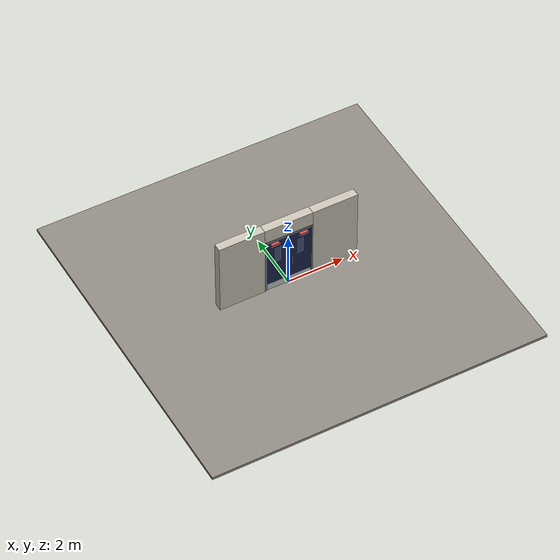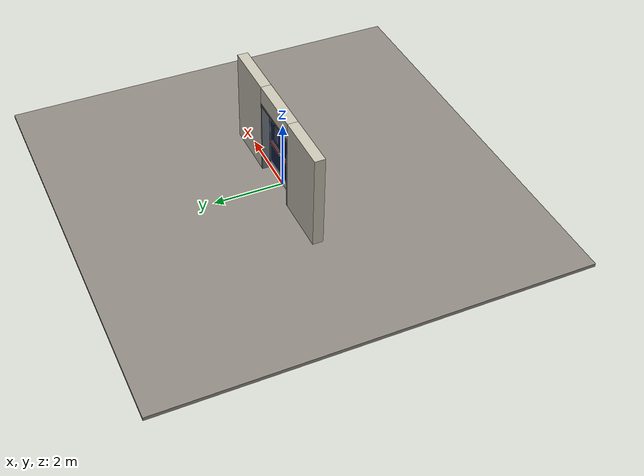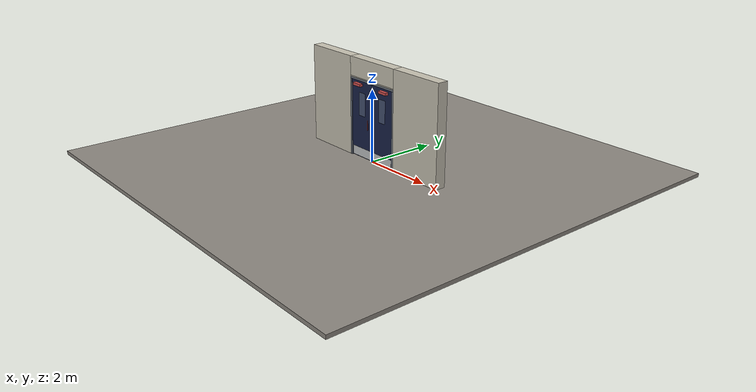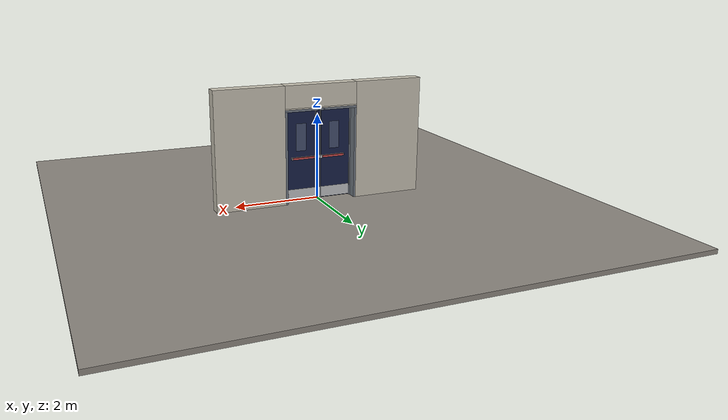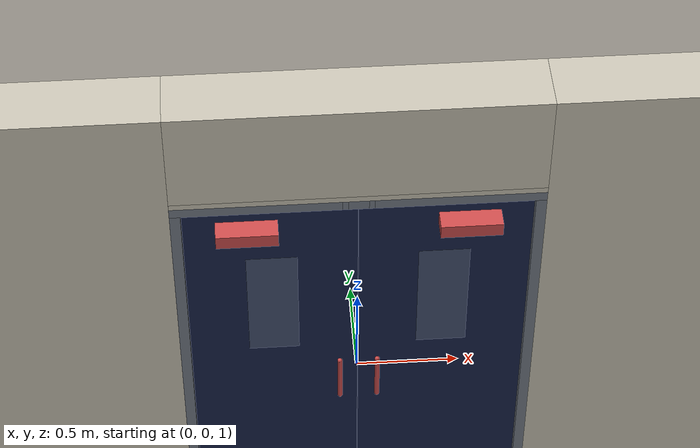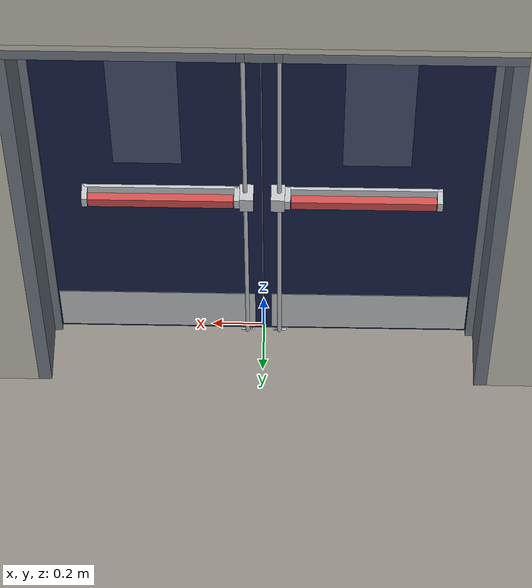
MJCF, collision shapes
<?xml version="1.0" ?>
<mujoco model="db0275_swing_double_full">
  <compiler angle="radian" meshdir="../../hardware" texturedir="../../textures" autolimits="true" inertiafromgeom="false"/>
  <option timestep="0.002" integrator="implicitfast" cone="elliptic" impratio="10" noslip_iterations="3">
    <flag multiccd="enable"/>
  </option>
  <size memory="16M"/>
  <default>
    <geom condim="4" solref="0.005 1" solimp="0.95 0.99 0.001"/>
    <joint solreflimit="0.005 1" solimplimit="0.95 0.99 0.001"/>
    <tendon solreflimit="0.005 1"/>
    <equality solref="0.002 1"/>
  </default>
  <visual>
    <headlight ambient="0.4 0.4 0.4" diffuse="0.7 0.7 0.7" specular="0.2 0.2 0.2"/>
    <quality shadowsize="4096"/>
    <map znear="0.01" zfar="60"/>
  </visual>
  <asset>
    <mesh name="closer_body_fdc4667657" file="closer_body_fdc4667657.obj"/>
    <mesh name="exit_sign_a6449bfa2c" file="exit_sign_a6449bfa2c.obj"/>
    <mesh name="hinge_e22b26c0c1" file="hinge_e22b26c0c1.obj"/>
    <mesh name="hinge_jamb_e1d088f8dc" file="hinge_jamb_e1d088f8dc.obj"/>
    <mesh name="pull_f8d79d6331" file="pull_f8d79d6331.obj"/>
    <mesh name="touchbar_pad_7cd2ebfaf5" file="touchbar_pad_7cd2ebfaf5.obj"/>
    <material name="mat_floor" rgba="0.55 0.53 0.5 1" specular="0.2" shininess="0.15" reflectance="0"/>
    <material name="mat_wall" rgba="0.78 0.76 0.7 1" specular="0.2" shininess="0.1" reflectance="0"/>
    <material name="mat_leaf_a" rgba="0.09 0.13 0.28 1" specular="0.23" shininess="0.36" reflectance="0.02"/>
    <material name="mat_glass" rgba="0.85 0.92 0.95 0.25" specular="0.2" shininess="0.95" reflectance="0.1"/>
    <material name="mat_hinge" rgba="0.65 0.66 0.68 1" specular="0.74" shininess="0.5" reflectance="0.36"/>
    <material name="mat_op_stainless" rgba="0.75 0.76 0.77 1" specular="0.8" shininess="0.65" reflectance="0.4"/>
    <material name="mat_bolt" rgba="0.75 0.76 0.77 1" specular="0.8" shininess="0.65" reflectance="0.4"/>
    <material name="mat_closer" rgba="0.22 0.17 0.13 1" specular="0.8" shininess="0.6" reflectance="0.4"/>
    <material name="mat_kick" rgba="0.75 0.76 0.77 1" specular="0.8" shininess="0.65" reflectance="0.4"/>
    <material name="mat_exit_sign" rgba="0.85 0.1 0.1 1" specular="0.2" shininess="0.6" reflectance="0"/>
    <material name="mat_sign_bracket" rgba="0.8 0.81 0.83 1" specular="0.8" shininess="0.6" reflectance="0.4"/>
    <material name="mat_leaf_b" rgba="0.09 0.13 0.28 1" specular="0.23" shininess="0.36" reflectance="0.02"/>
    <material name="mat_frame" rgba="0.45 0.48 0.52 1" specular="0.32" shininess="0.6" reflectance="0.08"/>
    <texture name="skybox" type="skybox" builtin="gradient" rgb1="0.6 0.7 0.85" rgb2="0.9 0.92 0.95" width="256" height="256"/>
  </asset>
  <worldbody>
    <light name="sun" pos="1.5 -2.5 4" dir="-0.3 0.5 -0.8" directional="true" diffuse="0.8 0.8 0.8" specular="0.3 0.3 0.3" castshadow="true"/>
    <light name="fill" pos="-1.5 2.5 3" dir="0.3 -0.5 -0.7" directional="true" diffuse="0.35 0.35 0.4" castshadow="false"/>
    <camera name="robot_view" pos="0 -2.529812 1.812087" xyaxes="1 0 0 0 0.26963 0.962964" fovy="52"/>
    <camera name="far_view" pos="0 2.745812 1.812087" xyaxes="-1 0 0 0 -0.26963 0.962964" fovy="52"/>
    <camera name="iso" pos="-2.004737 -2.107762 2.234138" xyaxes="0.741536 -0.670913 0 0.242917 0.268487 0.932151" fovy="46"/>
    <camera name="detail_handle" pos="0.0885 -0.897 1.296" xyaxes="0.97561 0.219512 0 -0.070934 0.315262 0.94635" fovy="38"/>
    <geom name="floor" type="box" size="6 6 0.05" pos="0 0 -0.05" material="mat_floor" group="0" contype="1" conaffinity="1" friction="0.8 0.005 0.0001" density="2400"/>
    <geom name="wall_left" type="box" size="0.81625 0.15 1.3735" pos="-1.68375 0.108 1.3735" material="mat_wall" group="0" contype="1" conaffinity="1" friction="0.6 0.005 0.0001" density="800"/>
    <geom name="wall_right" type="box" size="0.81625 0.15 1.3735" pos="1.68375 0.108 1.3735" material="mat_wall" group="0" contype="1" conaffinity="1" friction="0.6 0.005 0.0001" density="800"/>
    <geom name="wall_header" type="box" size="0.8675 0.15 0.26" pos="0 0.108 2.487" material="mat_wall" group="0" contype="1" conaffinity="1" friction="0.6 0.005 0.0001" density="800"/>
    <geom name="hinge_0_jamb" type="mesh" mesh="hinge_jamb_e1d088f8dc" pos="-0.8145 -0.029 0.266" material="mat_hinge" group="1" contype="0" conaffinity="0" density="7850"/>
    <geom name="hinge_1_jamb" type="mesh" mesh="hinge_jamb_e1d088f8dc" pos="-0.8145 -0.029 1.0795" material="mat_hinge" group="1" contype="0" conaffinity="0" density="7850"/>
    <geom name="hinge_2_jamb" type="mesh" mesh="hinge_jamb_e1d088f8dc" pos="-0.8145 -0.029 1.963" material="mat_hinge" group="1" contype="0" conaffinity="0" density="7850"/>
    <geom name="leaf_a_bottom_strike_plate" type="box" size="0.0255 0.0255 0.00075" pos="-0.0615 0 0.00075" material="mat_bolt" group="0" contype="1" conaffinity="1" friction="0.6 0.005 0.0001" density="7850"/>
    <geom name="leaf_a_bottom_strike_p" type="box" size="0.0215 0.004 0.00575" pos="-0.0615 0.0145 0.00725" material="mat_bolt" group="0" contype="1" conaffinity="1" friction="0.6 0.005 0.0001" density="7850"/>
    <geom name="leaf_a_bottom_strike_n" type="box" size="0.0215 0.004 0.00575" pos="-0.0615 -0.0145 0.00725" material="mat_bolt" group="0" contype="1" conaffinity="1" friction="0.6 0.005 0.0001" density="7850"/>
    <geom name="leaf_a_bottom_strike_e" type="box" size="0.004 0.0215 0.00575" pos="-0.047 0 0.00725" material="mat_bolt" group="0" contype="1" conaffinity="1" friction="0.6 0.005 0.0001" density="7850"/>
    <geom name="exit_sign" type="mesh" mesh="exit_sign_a6449bfa2c" pos="0 0.15 2.447" material="mat_exit_sign" group="2" contype="0" conaffinity="0" density="500"/>
    <geom name="hinge_0_jamb_2" type="mesh" mesh="hinge_jamb_e1d088f8dc" pos="0.8145 -0.029 0.266" quat="0 0 1 0" material="mat_hinge" group="1" contype="0" conaffinity="0" density="7850"/>
    <geom name="hinge_1_jamb_2" type="mesh" mesh="hinge_jamb_e1d088f8dc" pos="0.8145 -0.029 1.0795" quat="0 0 1 0" material="mat_hinge" group="1" contype="0" conaffinity="0" density="7850"/>
    <geom name="hinge_2_jamb_2" type="mesh" mesh="hinge_jamb_e1d088f8dc" pos="0.8145 -0.029 1.963" quat="0 0 1 0" material="mat_hinge" group="1" contype="0" conaffinity="0" density="7850"/>
    <geom name="leaf_b_bottom_strike_plate" type="box" size="0.0255 0.0255 0.00075" pos="0.0615 0 0.00075" material="mat_bolt" group="0" contype="1" conaffinity="1" friction="0.6 0.005 0.0001" density="7850"/>
    <geom name="leaf_b_bottom_strike_p" type="box" size="0.0215 0.004 0.00575" pos="0.0615 0.0145 0.00725" material="mat_bolt" group="0" contype="1" conaffinity="1" friction="0.6 0.005 0.0001" density="7850"/>
    <geom name="leaf_b_bottom_strike_n" type="box" size="0.0215 0.004 0.00575" pos="0.0615 -0.0145 0.00725" material="mat_bolt" group="0" contype="1" conaffinity="1" friction="0.6 0.005 0.0001" density="7850"/>
    <geom name="leaf_b_bottom_strike_e" type="box" size="0.004 0.0215 0.00575" pos="0.047 0 0.00725" material="mat_bolt" group="0" contype="1" conaffinity="1" friction="0.6 0.005 0.0001" density="7850"/>
    <geom name="jamb_l" type="box" size="0.025 0.15 1.0735" pos="-0.8425 0.108 1.0735" material="mat_frame" group="0" contype="1" conaffinity="1" friction="0.6 0.005 0.0001" density="300"/>
    <geom name="jamb_r" type="box" size="0.025 0.15 1.0735" pos="0.8425 0.108 1.0735" material="mat_frame" group="0" contype="1" conaffinity="1" friction="0.6 0.005 0.0001" density="300"/>
    <geom name="jamb_head_pwall_-61_n" type="box" size="0.0135 0.0155 0.025" pos="-0.0615 -0.0265 2.172" material="mat_frame" group="0" contype="1" conaffinity="1" friction="0.6 0.005 0.0001" density="300"/>
    <geom name="jamb_head_pwall_-61_p" type="box" size="0.0135 0.1235 0.025" pos="-0.0615 0.1345 2.172" material="mat_frame" group="0" contype="1" conaffinity="1" friction="0.6 0.005 0.0001" density="300"/>
    <geom name="jamb_head_pback_-61" type="box" size="0.0135 0.011 0.0135" pos="-0.0615 0 2.1835" material="mat_frame" group="0" contype="1" conaffinity="1" friction="0.6 0.005 0.0001" density="300"/>
    <geom name="jamb_head_pwall_61_n" type="box" size="0.0135 0.0155 0.025" pos="0.0615 -0.0265 2.172" material="mat_frame" group="0" contype="1" conaffinity="1" friction="0.6 0.005 0.0001" density="300"/>
    <geom name="jamb_head_pwall_61_p" type="box" size="0.0135 0.1235 0.025" pos="0.0615 0.1345 2.172" material="mat_frame" group="0" contype="1" conaffinity="1" friction="0.6 0.005 0.0001" density="300"/>
    <geom name="jamb_head_pback_61" type="box" size="0.0135 0.011 0.0135" pos="0.0615 0 2.1835" material="mat_frame" group="0" contype="1" conaffinity="1" friction="0.6 0.005 0.0001" density="300"/>
    <geom name="jamb_head_0" type="box" size="0.39625 0.15 0.025" pos="-0.47125 0.108 2.172" material="mat_frame" group="0" contype="1" conaffinity="1" friction="0.6 0.005 0.0001" density="300"/>
    <geom name="jamb_head_1" type="box" size="0.048 0.15 0.025" pos="0 0.108 2.172" material="mat_frame" group="0" contype="1" conaffinity="1" friction="0.6 0.005 0.0001" density="300"/>
    <geom name="jamb_head_2" type="box" size="0.39625 0.15 0.025" pos="0.47125 0.108 2.172" material="mat_frame" group="0" contype="1" conaffinity="1" friction="0.6 0.005 0.0001" density="300"/>
    <geom name="head_stud" type="box" size="0.8675 0.15 0.015" pos="0 0.108 2.212" material="mat_wall" group="0" contype="1" conaffinity="1" friction="0.6 0.005 0.0001" density="500"/>
    <geom name="stop_l" type="box" size="0.015 0.008 1.0735" pos="-0.8025 0.0305 1.0735" material="mat_frame" group="0" contype="1" conaffinity="1" friction="0.6 0.005 0.0001" density="300"/>
    <geom name="stop_r" type="box" size="0.015 0.008 1.0735" pos="0.8025 0.0305 1.0735" material="mat_frame" group="0" contype="1" conaffinity="1" friction="0.6 0.005 0.0001" density="300"/>
    <geom name="stop_head" type="box" size="0.8175 0.008 0.015" pos="0 0.0305 2.132" material="mat_frame" group="0" contype="1" conaffinity="1" friction="0.6 0.005 0.0001" density="300"/>
    <site name="approach_point" pos="0 -1.5 0" quat="1 0 0 0" size="0.05" rgba="0.2 0.9 0.2 0.5" group="4"/>
    <site name="goal_point" pos="0 1.5 0" quat="1 0 0 0" size="0.05" rgba="0.2 0.9 0.2 0.5" group="4"/>
    <site name="door_plane_center" pos="0 0 1.0735" quat="1 0 0 0" size="0.02" rgba="0.2 0.9 0.2 0.5" group="4"/>
    <site name="approach_point_2" pos="0 -1.5 0" quat="1 0 0 0" size="0.05" rgba="0.2 0.9 0.2 0.5" group="4"/>
    <site name="goal_point_2" pos="0 1.5 0" quat="1 0 0 0" size="0.05" rgba="0.2 0.9 0.2 0.5" group="4"/>
    <site name="door_plane_center_2" pos="0 0 1.0735" quat="1 0 0 0" size="0.02" rgba="0.2 0.9 0.2 0.5" group="4"/>
    <site name="approach_point_3" pos="0 -1.5 0" quat="1 0 0 0" size="0.05" rgba="0.2 0.9 0.2 0.5" group="4"/>
    <site name="goal_point_3" pos="0 1.5 0" quat="1 0 0 0" size="0.05" rgba="0.2 0.9 0.2 0.5" group="4"/>
    <site name="door_plane_center_3" pos="0 0 1.0735" quat="1 0 0 0" size="0.02" rgba="0.2 0.9 0.2 0.5" group="4"/>
    <body name="leaf_a" pos="-0.8175 0 0">
      <inertial pos="0.407813 -0.014078 1.227133" mass="44.705895" quat="0.501518 -0.470356 -0.515722 -0.51115" diaginertia="2.325330921 22.446920728 24.663791252"/>
      <joint name="leaf_a_hinge" type="hinge" axis="0 0 -1" pos="0.003 -0.029 0" limited="true" range="0 1.570796" solreflimit="0.02 1" damping="12.168374" frictionloss="1.783376" stiffness="11.796564" springref="-1.815783" armature="0.02"/>
      <geom name="leaf_a_slab" type="box" size="0.4065 0.022 1.0635" pos="0.4095 0 1.0795" material="mat_leaf_a" group="0" contype="1" conaffinity="1" friction="0.4 0.005 0.0001" density="1"/>
      <geom name="leaf_a_glass_0" type="box" size="0.12195 0.0228 0.31905" pos="0.4095 0 1.5049" material="mat_glass" group="1" contype="0" conaffinity="0" density="1"/>
      <geom name="hinge_0" type="mesh" mesh="hinge_e22b26c0c1" pos="0.003 -0.029 0.266" material="mat_hinge" group="1" contype="0" conaffinity="0" density="7850"/>
      <geom name="hinge_1" type="mesh" mesh="hinge_e22b26c0c1" pos="0.003 -0.029 1.0795" material="mat_hinge" group="1" contype="0" conaffinity="0" density="7850"/>
      <geom name="hinge_2" type="mesh" mesh="hinge_e22b26c0c1" pos="0.003 -0.029 1.963" material="mat_hinge" group="1" contype="0" conaffinity="0" density="7850"/>
      <geom name="leaf_a_exit_device_rail" type="box" size="0.284225 0.006 0.025" pos="0.451775 0.028 1.016" material="mat_op_stainless" group="0" contype="1" conaffinity="1" friction="0.6 0.005 0.0001" density="3000"/>
      <geom name="leaf_a_exit_device_rail_end_n" type="box" size="0.01 0.0325 0.025" pos="0.17755 0.0545 1.016" material="mat_op_stainless" group="0" contype="1" conaffinity="1" friction="0.6 0.005 0.0001" density="3000"/>
      <geom name="leaf_a_exit_device_rail_end_p" type="box" size="0.01 0.0325 0.025" pos="0.726 0.0545 1.016" material="mat_op_stainless" group="0" contype="1" conaffinity="1" friction="0.6 0.005 0.0001" density="3000"/>
      <geom name="leaf_a_exit_device_case" type="box" size="0.025 0.034125 0.0375" pos="0.761 0.056125 1.016" material="mat_op_stainless" group="0" contype="1" conaffinity="1" friction="0.6 0.005 0.0001" density="3000"/>
      <geom name="leaf_a_exit_device_rod_top" type="cylinder" size="0.008 0.52975" pos="0.756 0.052 1.58325" material="mat_op_stainless" group="1" contype="0" conaffinity="0" density="7850"/>
      <geom name="leaf_a_exit_device_rod_bot" type="cylinder" size="0.008 0.46625" pos="0.756 0.052 0.51225" material="mat_op_stainless" group="1" contype="0" conaffinity="0" density="7850"/>
      <geom name="leaf_a_far_pull_n" type="mesh" mesh="pull_f8d79d6331" pos="0.726 -0.022 1.016" quat="0.707107 0.707107 0 0" material="mat_op_stainless" group="1" contype="0" conaffinity="0" density="3000"/>
      <geom name="leaf_a_far_pull_col_n" type="capsule" size="0.0125 0.13" pos="0.726 -0.097 1.016" material="mat_op_stainless" group="3" contype="1" conaffinity="1" rgba="0.8 0.3 0.3 0.25" friction="0.7 0.01 0.0001" density="3000"/>
      <geom name="closer_body" type="mesh" mesh="closer_body_fdc4667657" pos="0.3 -0.022 2.047" quat="0.707107 0.707107 0 0" material="mat_closer" group="1" contype="0" conaffinity="0" density="2000"/>
      <geom name="closer_body_col" type="box" size="0.145 0.05 0.035" pos="0.3 -0.072 2.047" material="mat_closer" group="3" contype="1" conaffinity="1" rgba="0.8 0.3 0.3 0.25" friction="0.6 0.005 0.0001" density="2000"/>
      <geom name="kick_plate_n" type="box" size="0.3765 0.0008 0.125" pos="0.4095 -0.0228 0.151" material="mat_kick" group="2" contype="0" conaffinity="0" density="7900"/>
      <geom name="kick_plate_p" type="box" size="0.3765 0.0008 0.125" pos="0.4095 0.0228 0.151" material="mat_kick" group="2" contype="0" conaffinity="0" density="7900"/>
      <site name="leaf_a_far_pull_grip_n" pos="0.726 -0.097 1.016" quat="1 0 0 0" size="0.012" rgba="0.2 0.9 0.2 0.5" group="4"/>
      <site name="leaf_a_edge_mid" pos="0.816 0 1.0635" quat="1 0 0 0" size="0.02" rgba="0.2 0.9 0.2 0.5" group="4"/>
      <body name="leaf_a_exit_device" pos="0.451775 0.022 1.016">
        <inertial pos="0 0.05 0" mass="4.231845" quat="0.707107 -0.707107 0 0" diaginertia="0.001031512 0.096575641 0.096972376"/>
        <joint name="leaf_a_exit_device_slide" type="slide" axis="0 -1 0" limited="true" range="0 0.016" damping="156.647158" frictionloss="0.5" stiffness="1400" springref="-0.015714" armature="0.15"/>
        <geom name="leaf_a_exit_device_pad" type="mesh" mesh="touchbar_pad_7cd2ebfaf5" pos="0 0 0" quat="-0.707107 0.707107 0 0" material="mat_op_stainless" group="1" contype="0" conaffinity="0" density="3000"/>
        <geom name="leaf_a_exit_device_pad_col" type="box" size="0.261225 0.015 0.0225" pos="0 0.05 0" material="mat_op_stainless" group="3" contype="1" conaffinity="1" rgba="0.8 0.3 0.3 0.25" friction="0.8 0.01 0.0001" density="3000"/>
        <site name="leaf_a_exit_device_push" pos="0 0.065 0" quat="1 0 0 0" size="0.015" rgba="0.2 0.9 0.2 0.5" group="4"/>
      </body>
      <body name="leaf_a_top_latch" pos="0.756 0 2.143">
        <inertial pos="0 0 -0.0155" mass="0.151026" quat="0.707107 0 0.707107 0" diaginertia="0.00000654 0.000053442 0.000053442"/>
        <joint name="leaf_a_top_latch_slide" type="slide" axis="0 0 -1" limited="true" range="0 0.019" damping="2" frictionloss="0.3" stiffness="800" springref="-0.01" armature="0.1"/>
        <geom name="leaf_a_top_latch_capsule" type="capsule" size="0.0095 0.025" pos="0 0 -0.0155" material="mat_bolt" group="0" contype="1" conaffinity="1" friction="0.2 0.005 0.0001" density="8500"/>
      </body>
      <body name="leaf_a_bottom_latch" pos="0.756 0 0.03">
        <inertial pos="0 0 0.012" mass="0.167896" quat="0.707107 0 0.707107 0" diaginertia="0.000007301 0.000072388 0.000072388"/>
        <joint name="leaf_a_bottom_latch_slide" type="slide" axis="0 0 1" limited="true" range="0 0.026" damping="2" frictionloss="0.3" stiffness="800" springref="-0.01" armature="0.1"/>
        <geom name="leaf_a_bottom_latch_capsule" type="capsule" size="0.0095 0.0285" pos="0 0 0.012" material="mat_bolt" group="0" contype="1" conaffinity="1" friction="0.2 0.005 0.0001" density="8500"/>
      </body>
    </body>
    <body name="leaf_b" pos="0.8175 0 0">
      <inertial pos="-0.407813 -0.014078 1.227133" mass="44.705895" quat="0.51115 -0.515722 -0.470356 -0.501518" diaginertia="2.325330921 22.446920728 24.663791252"/>
      <joint name="leaf_b_hinge" type="hinge" axis="0 0 1" pos="-0.003 -0.029 0" limited="true" range="0 1.570796" solreflimit="0.02 1" damping="12.168374" frictionloss="1.783376" stiffness="11.796564" springref="-1.815783" armature="0.02"/>
      <geom name="leaf_b_slab" type="box" size="0.4065 0.022 1.0635" pos="-0.4095 0 1.0795" material="mat_leaf_b" group="0" contype="1" conaffinity="1" friction="0.4 0.005 0.0001" density="1"/>
      <geom name="leaf_b_glass_0" type="box" size="0.12195 0.0228 0.31905" pos="-0.4095 0 1.5049" material="mat_glass" group="1" contype="0" conaffinity="0" density="1"/>
      <geom name="hinge_0_2" type="mesh" mesh="hinge_e22b26c0c1" pos="-0.003 -0.029 0.266" quat="0 0 1 0" material="mat_hinge" group="1" contype="0" conaffinity="0" density="7850"/>
      <geom name="hinge_1_2" type="mesh" mesh="hinge_e22b26c0c1" pos="-0.003 -0.029 1.0795" quat="0 0 1 0" material="mat_hinge" group="1" contype="0" conaffinity="0" density="7850"/>
      <geom name="hinge_2_2" type="mesh" mesh="hinge_e22b26c0c1" pos="-0.003 -0.029 1.963" quat="0 0 1 0" material="mat_hinge" group="1" contype="0" conaffinity="0" density="7850"/>
      <geom name="leaf_b_exit_device_rail" type="box" size="0.284225 0.006 0.025" pos="-0.451775 0.028 1.016" material="mat_op_stainless" group="0" contype="1" conaffinity="1" friction="0.6 0.005 0.0001" density="3000"/>
      <geom name="leaf_b_exit_device_rail_end_n" type="box" size="0.01 0.0325 0.025" pos="-0.726 0.0545 1.016" material="mat_op_stainless" group="0" contype="1" conaffinity="1" friction="0.6 0.005 0.0001" density="3000"/>
      <geom name="leaf_b_exit_device_rail_end_p" type="box" size="0.01 0.0325 0.025" pos="-0.17755 0.0545 1.016" material="mat_op_stainless" group="0" contype="1" conaffinity="1" friction="0.6 0.005 0.0001" density="3000"/>
      <geom name="leaf_b_exit_device_case" type="box" size="0.025 0.034125 0.0375" pos="-0.761 0.056125 1.016" material="mat_op_stainless" group="0" contype="1" conaffinity="1" friction="0.6 0.005 0.0001" density="3000"/>
      <geom name="leaf_b_exit_device_rod_top" type="cylinder" size="0.008 0.52975" pos="-0.756 0.052 1.58325" material="mat_op_stainless" group="1" contype="0" conaffinity="0" density="7850"/>
      <geom name="leaf_b_exit_device_rod_bot" type="cylinder" size="0.008 0.46625" pos="-0.756 0.052 0.51225" material="mat_op_stainless" group="1" contype="0" conaffinity="0" density="7850"/>
      <geom name="leaf_b_far_pull_n" type="mesh" mesh="pull_f8d79d6331" pos="-0.726 -0.022 1.016" quat="0 0 -0.707107 0.707107" material="mat_op_stainless" group="1" contype="0" conaffinity="0" density="3000"/>
      <geom name="leaf_b_far_pull_col_n" type="capsule" size="0.0125 0.13" pos="-0.726 -0.097 1.016" material="mat_op_stainless" group="3" contype="1" conaffinity="1" rgba="0.8 0.3 0.3 0.25" friction="0.7 0.01 0.0001" density="3000"/>
      <geom name="closer_body_2" type="mesh" mesh="closer_body_fdc4667657" pos="-0.3 -0.022 2.047" quat="0 0 -0.707107 0.707107" material="mat_closer" group="1" contype="0" conaffinity="0" density="2000"/>
      <geom name="closer_body_col_2" type="box" size="0.145 0.05 0.035" pos="-0.3 -0.072 2.047" material="mat_closer" group="3" contype="1" conaffinity="1" rgba="0.8 0.3 0.3 0.25" friction="0.6 0.005 0.0001" density="2000"/>
      <geom name="kick_plate_n_2" type="box" size="0.3765 0.0008 0.125" pos="-0.4095 -0.0228 0.151" material="mat_kick" group="2" contype="0" conaffinity="0" density="7900"/>
      <geom name="kick_plate_p_2" type="box" size="0.3765 0.0008 0.125" pos="-0.4095 0.0228 0.151" material="mat_kick" group="2" contype="0" conaffinity="0" density="7900"/>
      <site name="leaf_b_far_pull_grip_n" pos="-0.726 -0.097 1.016" quat="1 0 0 0" size="0.012" rgba="0.2 0.9 0.2 0.5" group="4"/>
      <site name="leaf_b_edge_mid" pos="-0.816 0 1.0635" quat="1 0 0 0" size="0.02" rgba="0.2 0.9 0.2 0.5" group="4"/>
      <body name="leaf_b_exit_device" pos="-0.451775 0.022 1.016">
        <inertial pos="0 0.05 0" mass="4.231845" quat="0 0 0.707107 0.707107" diaginertia="0.001031512 0.096575641 0.096972376"/>
        <joint name="leaf_b_exit_device_slide" type="slide" axis="0 -1 0" limited="true" range="0 0.016" damping="156.647158" frictionloss="0.5" stiffness="1400" springref="-0.015714" armature="0.15"/>
        <geom name="leaf_b_exit_device_pad" type="mesh" mesh="touchbar_pad_7cd2ebfaf5" pos="0 0 0" quat="0 0 0.707107 0.707107" material="mat_op_stainless" group="1" contype="0" conaffinity="0" density="3000"/>
        <geom name="leaf_b_exit_device_pad_col" type="box" size="0.261225 0.015 0.0225" pos="0 0.05 0" material="mat_op_stainless" group="3" contype="1" conaffinity="1" rgba="0.8 0.3 0.3 0.25" friction="0.8 0.01 0.0001" density="3000"/>
        <site name="leaf_b_exit_device_push" pos="0 0.065 0" quat="1 0 0 0" size="0.015" rgba="0.2 0.9 0.2 0.5" group="4"/>
      </body>
      <body name="leaf_b_top_latch" pos="-0.756 0 2.143">
        <inertial pos="0 0 -0.0155" mass="0.151026" quat="0.707107 0 0.707107 0" diaginertia="0.00000654 0.000053442 0.000053442"/>
        <joint name="leaf_b_top_latch_slide" type="slide" axis="0 0 -1" limited="true" range="0 0.019" damping="2" frictionloss="0.3" stiffness="800" springref="-0.01" armature="0.1"/>
        <geom name="leaf_b_top_latch_capsule" type="capsule" size="0.0095 0.025" pos="0 0 -0.0155" material="mat_bolt" group="0" contype="1" conaffinity="1" friction="0.2 0.005 0.0001" density="8500"/>
      </body>
      <body name="leaf_b_bottom_latch" pos="-0.756 0 0.03">
        <inertial pos="0 0 0.012" mass="0.167896" quat="0.707107 0 0.707107 0" diaginertia="0.000007301 0.000072388 0.000072388"/>
        <joint name="leaf_b_bottom_latch_slide" type="slide" axis="0 0 1" limited="true" range="0 0.026" damping="2" frictionloss="0.3" stiffness="800" springref="-0.01" armature="0.1"/>
        <geom name="leaf_b_bottom_latch_capsule" type="capsule" size="0.0095 0.0285" pos="0 0 0.012" material="mat_bolt" group="0" contype="1" conaffinity="1" friction="0.2 0.005 0.0001" density="8500"/>
      </body>
    </body>
  </worldbody>
  <tendon>
    <fixed name="leaf_a_top_latch_coupling" limited="true" range="0 10">
      <joint joint="leaf_a_top_latch_slide" coef="1"/>
      <joint joint="leaf_a_exit_device_slide" coef="-1.142857"/>
    </fixed>
    <fixed name="leaf_a_bottom_latch_coupling" limited="true" range="0 10">
      <joint joint="leaf_a_bottom_latch_slide" coef="1"/>
      <joint joint="leaf_a_exit_device_slide" coef="-1.56391"/>
    </fixed>
    <fixed name="leaf_b_top_latch_coupling" limited="true" range="0 10">
      <joint joint="leaf_b_top_latch_slide" coef="1"/>
      <joint joint="leaf_b_exit_device_slide" coef="-1.142857"/>
    </fixed>
    <fixed name="leaf_b_bottom_latch_coupling" limited="true" range="0 10">
      <joint joint="leaf_b_bottom_latch_slide" coef="1"/>
      <joint joint="leaf_b_exit_device_slide" coef="-1.56391"/>
    </fixed>
  </tendon>
  <sensor>
    <jointpos name="leaf_a_hinge_pos" joint="leaf_a_hinge"/>
    <jointvel name="leaf_a_hinge_vel" joint="leaf_a_hinge"/>
    <jointpos name="leaf_a_exit_device_slide_pos" joint="leaf_a_exit_device_slide"/>
    <jointvel name="leaf_a_exit_device_slide_vel" joint="leaf_a_exit_device_slide"/>
    <jointpos name="leaf_a_top_latch_slide_pos" joint="leaf_a_top_latch_slide"/>
    <jointvel name="leaf_a_top_latch_slide_vel" joint="leaf_a_top_latch_slide"/>
    <jointpos name="leaf_a_bottom_latch_slide_pos" joint="leaf_a_bottom_latch_slide"/>
    <jointvel name="leaf_a_bottom_latch_slide_vel" joint="leaf_a_bottom_latch_slide"/>
    <jointpos name="leaf_b_hinge_pos" joint="leaf_b_hinge"/>
    <jointvel name="leaf_b_hinge_vel" joint="leaf_b_hinge"/>
    <jointpos name="leaf_b_exit_device_slide_pos" joint="leaf_b_exit_device_slide"/>
    <jointvel name="leaf_b_exit_device_slide_vel" joint="leaf_b_exit_device_slide"/>
    <jointpos name="leaf_b_top_latch_slide_pos" joint="leaf_b_top_latch_slide"/>
    <jointvel name="leaf_b_top_latch_slide_vel" joint="leaf_b_top_latch_slide"/>
    <jointpos name="leaf_b_bottom_latch_slide_pos" joint="leaf_b_bottom_latch_slide"/>
    <jointvel name="leaf_b_bottom_latch_slide_vel" joint="leaf_b_bottom_latch_slide"/>
  </sensor>
</mujoco>
